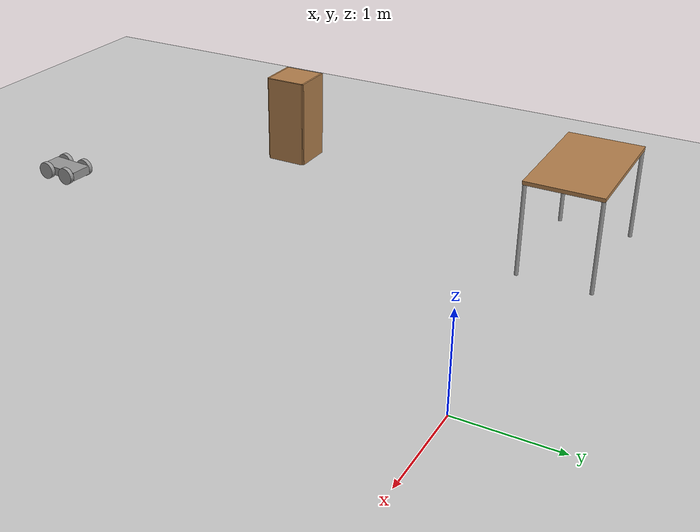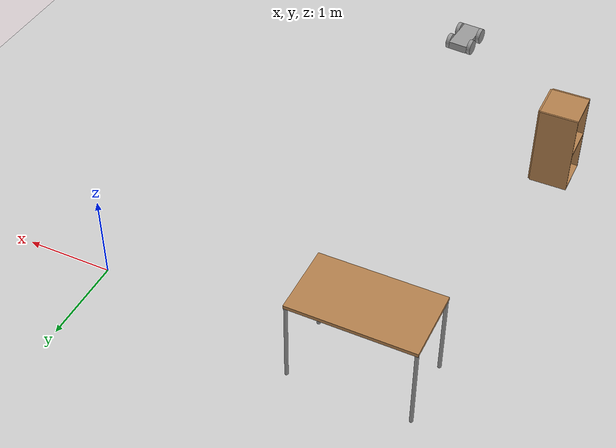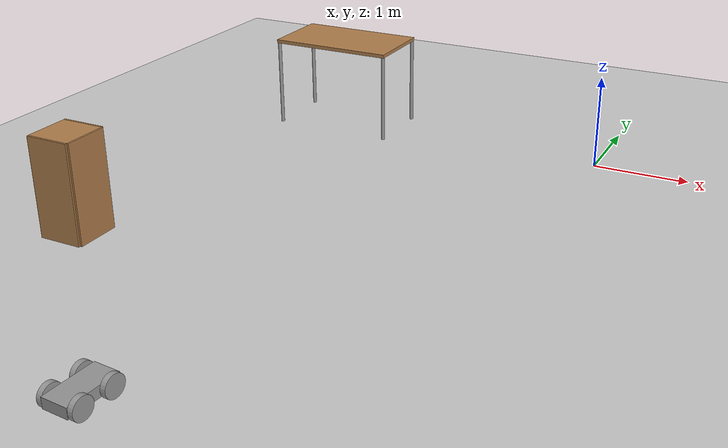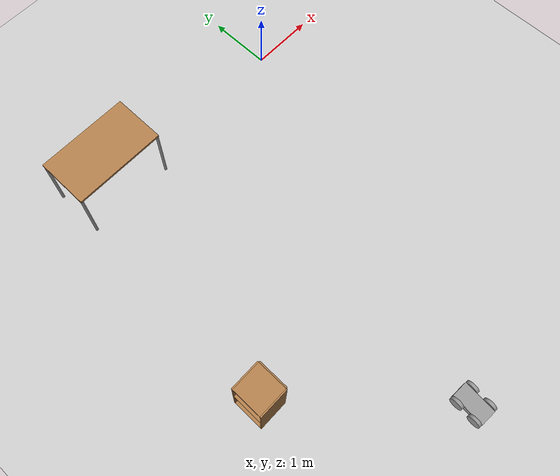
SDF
<sdf version="1.6">
 <world name="default">
  <model name="ground_plane">
   <static>1</static>
   <link name="link">
    <collision name="collision">
     <geometry><plane><normal>0 0 1</normal><size>100 100</size></plane></geometry>
     <surface><friction><ode><mu>100</mu><mu2>50</mu2></ode></friction></surface>
    </collision>
    <visual name="visual">
     <cast_shadows>0</cast_shadows>
     <geometry><plane><normal>0 0 1</normal><size>100 100</size></plane></geometry>
     <material>
      <script><uri>file://media/materials/scripts/gazebo.material</uri><name>Gazebo/Grey</name></script>
     </material>
    </visual>
   </link>
  </model>
  <model name="Car_0">
   <link name="link_0">
    <inertial>
     <mass>1</mass>
     <inertia>
      <ixx>0.166667</ixx>
      <ixy>0</ixy>
      <ixz>0</ixz>
      <iyy>0.166667</iyy>
      <iyz>0</iyz>
      <izz>0.166667</izz>
     </inertia>
    </inertial>
    <visual name="visual">
     <geometry><box><size>0.25 0.5 0.1</size></box></geometry>
     <material>
      <lighting>1</lighting>
      <script><uri>file://media/materials/scripts/gazebo.material</uri><name>Gazebo/Grey</name></script>
      <ambient>0.3 0.3 0.3 1</ambient>
      <diffuse>0.7 0.7 0.7 1</diffuse>
      <specular>0.01 0.01 0.01 1</specular>
      <emissive>0 0 0 1</emissive>
      <shader type="vertex"><normal_map>__default__</normal_map></shader>
     </material>
    </visual>
    <collision name="collision">
     <geometry><box><size>0.25 0.5 0.1</size></box></geometry>
     <surface>
      <friction>
       <ode><mu>1</mu><mu2>1</mu2><fdir1>0 0 0</fdir1><slip1>0</slip1><slip2>0</slip2></ode>
       <torsional>
        <coefficient>1</coefficient>
        <patch_radius>0</patch_radius>
        <surface_radius>0</surface_radius>
        <use_patch_radius>1</use_patch_radius>
        <ode><slip>0</slip></ode>
       </torsional>
      </friction>
      <bounce><restitution_coefficient>0</restitution_coefficient><threshold>1e+06</threshold></bounce>
      <contact>
       <collide_without_contact>0</collide_without_contact>
       <collide_without_contact_bitmask>1</collide_without_contact_bitmask>
       <collide_bitmask>1</collide_bitmask>
       <ode>
        <soft_cfm>0</soft_cfm>
        <soft_erp>0.2</soft_erp>
        <kp>1e+13</kp>
        <kd>1</kd>
        <max_vel>0.01</max_vel>
        <min_depth>0</min_depth>
       </ode>
       <bullet>
        <split_impulse>1</split_impulse>
        <split_impulse_penetration_threshold>-0.01</split_impulse_penetration_threshold>
        <soft_cfm>0</soft_cfm>
        <soft_erp>0.2</soft_erp>
        <kp>1e+13</kp>
        <kd>1</kd>
       </bullet>
      </contact>
     </surface>
    </collision>
   </link>
   <link name="link_1">
    <pose>-0.15001 0.15 0 0 1.5707 0</pose>
    <inertial>
     <mass>1</mass>
     <inertia><ixx>0.145833</ixx><ixy>0</ixy><ixz>0</ixz><iyy>0.145833</iyy><iyz>0</iyz><izz>0.125</izz></inertia>
    </inertial>
    <visual name="visual">
     <geometry><cylinder><radius>0.1</radius><length>0.05</length></cylinder></geometry>
     <material>
      <lighting>1</lighting>
      <script><uri>file://media/materials/scripts/gazebo.material</uri><name>Gazebo/Grey</name></script>
      <ambient>0.3 0.3 0.3 1</ambient>
      <diffuse>0.7 0.7 0.7 1</diffuse>
      <specular>0.01 0.01 0.01 1</specular>
      <emissive>0 0 0 1</emissive>
      <shader type="vertex"><normal_map>__default__</normal_map></shader>
     </material>
    </visual>
    <collision name="collision">
     <geometry><cylinder><radius>0.1</radius><length>0.05</length></cylinder></geometry>
     <surface>
      <friction>
       <ode><mu>1</mu><mu2>1</mu2><fdir1>0 0 0</fdir1><slip1>0</slip1><slip2>0</slip2></ode>
       <torsional>
        <coefficient>1</coefficient>
        <patch_radius>0</patch_radius>
        <surface_radius>0</surface_radius>
        <use_patch_radius>1</use_patch_radius>
        <ode><slip>0</slip></ode>
       </torsional>
      </friction>
      <bounce><restitution_coefficient>0</restitution_coefficient><threshold>1e+06</threshold></bounce>
      <contact>
       <collide_without_contact>0</collide_without_contact>
       <collide_without_contact_bitmask>1</collide_without_contact_bitmask>
       <collide_bitmask>1</collide_bitmask>
       <ode>
        <soft_cfm>0</soft_cfm>
        <soft_erp>0.2</soft_erp>
        <kp>1e+13</kp>
        <kd>1</kd>
        <max_vel>0.01</max_vel>
        <min_depth>0</min_depth>
       </ode>
       <bullet>
        <split_impulse>1</split_impulse>
        <split_impulse_penetration_threshold>-0.01</split_impulse_penetration_threshold>
        <soft_cfm>0</soft_cfm>
        <soft_erp>0.2</soft_erp>
        <kp>1e+13</kp>
        <kd>1</kd>
       </bullet>
      </contact>
     </surface>
    </collision>
   </link>
   <link name="link_1_clone">
    <pose>0.15001 -0.15 0 0 1.5707 0</pose>
    <inertial>
     <mass>1</mass>
     <inertia><ixx>0.145833</ixx><ixy>0</ixy><ixz>0</ixz><iyy>0.145833</iyy><iyz>0</iyz><izz>0.125</izz></inertia>
    </inertial>
    <visual name="visual">
     <geometry><cylinder><radius>0.1</radius><length>0.05</length></cylinder></geometry>
     <material>
      <lighting>1</lighting>
      <script><uri>file://media/materials/scripts/gazebo.material</uri><name>Gazebo/Grey</name></script>
      <ambient>0.3 0.3 0.3 1</ambient>
      <diffuse>0.7 0.7 0.7 1</diffuse>
      <specular>0.01 0.01 0.01 1</specular>
      <emissive>0 0 0 1</emissive>
      <shader type="vertex"><normal_map>__default__</normal_map></shader>
     </material>
    </visual>
    <collision name="collision">
     <geometry><cylinder><radius>0.1</radius><length>0.05</length></cylinder></geometry>
     <surface>
      <friction>
       <ode><mu>1</mu><mu2>1</mu2><fdir1>0 0 0</fdir1><slip1>0</slip1><slip2>0</slip2></ode>
       <torsional>
        <coefficient>1</coefficient>
        <patch_radius>0</patch_radius>
        <surface_radius>0</surface_radius>
        <use_patch_radius>1</use_patch_radius>
        <ode><slip>0</slip></ode>
       </torsional>
      </friction>
      <bounce><restitution_coefficient>0</restitution_coefficient><threshold>1e+06</threshold></bounce>
      <contact>
       <collide_without_contact>0</collide_without_contact>
       <collide_without_contact_bitmask>1</collide_without_contact_bitmask>
       <collide_bitmask>1</collide_bitmask>
       <ode>
        <soft_cfm>0</soft_cfm>
        <soft_erp>0.2</soft_erp>
        <kp>1e+13</kp>
        <kd>1</kd>
        <max_vel>0.01</max_vel>
        <min_depth>0</min_depth>
       </ode>
       <bullet>
        <split_impulse>1</split_impulse>
        <split_impulse_penetration_threshold>-0.01</split_impulse_penetration_threshold>
        <soft_cfm>0</soft_cfm>
        <soft_erp>0.2</soft_erp>
        <kp>1e+13</kp>
        <kd>1</kd>
       </bullet>
      </contact>
     </surface>
    </collision>
   </link>
   <link name="link_1_clone_0">
    <pose>-0.15001 -0.15 0 0 1.5707 0</pose>
    <inertial>
     <mass>1</mass>
     <inertia><ixx>0.145833</ixx><ixy>0</ixy><ixz>0</ixz><iyy>0.145833</iyy><iyz>0</iyz><izz>0.125</izz></inertia>
    </inertial>
    <visual name="visual">
     <geometry><cylinder><radius>0.1</radius><length>0.05</length></cylinder></geometry>
     <material>
      <lighting>1</lighting>
      <script><uri>file://media/materials/scripts/gazebo.material</uri><name>Gazebo/Grey</name></script>
      <ambient>0.3 0.3 0.3 1</ambient>
      <diffuse>0.7 0.7 0.7 1</diffuse>
      <specular>0.01 0.01 0.01 1</specular>
      <emissive>0 0 0 1</emissive>
      <shader type="vertex"><normal_map>__default__</normal_map></shader>
     </material>
    </visual>
    <collision name="collision">
     <geometry><cylinder><radius>0.1</radius><length>0.05</length></cylinder></geometry>
     <surface>
      <friction>
       <ode><mu>1</mu><mu2>1</mu2><fdir1>0 0 0</fdir1><slip1>0</slip1><slip2>0</slip2></ode>
       <torsional>
        <coefficient>1</coefficient>
        <patch_radius>0</patch_radius>
        <surface_radius>0</surface_radius>
        <use_patch_radius>1</use_patch_radius>
        <ode><slip>0</slip></ode>
       </torsional>
      </friction>
      <bounce><restitution_coefficient>0</restitution_coefficient><threshold>1e+06</threshold></bounce>
      <contact>
       <collide_without_contact>0</collide_without_contact>
       <collide_without_contact_bitmask>1</collide_without_contact_bitmask>
       <collide_bitmask>1</collide_bitmask>
       <ode>
        <soft_cfm>0</soft_cfm>
        <soft_erp>0.2</soft_erp>
        <kp>1e+13</kp>
        <kd>1</kd>
        <max_vel>0.01</max_vel>
        <min_depth>0</min_depth>
       </ode>
       <bullet>
        <split_impulse>1</split_impulse>
        <split_impulse_penetration_threshold>-0.01</split_impulse_penetration_threshold>
        <soft_cfm>0</soft_cfm>
        <soft_erp>0.2</soft_erp>
        <kp>1e+13</kp>
        <kd>1</kd>
       </bullet>
      </contact>
     </surface>
    </collision>
   </link>
   <link name="link_1_clone_clone">
    <pose>0.15001 0.15 0 0 1.5707 0</pose>
    <inertial>
     <mass>1</mass>
     <inertia><ixx>0.145833</ixx><ixy>0</ixy><ixz>0</ixz><iyy>0.145833</iyy><iyz>0</iyz><izz>0.125</izz></inertia>
    </inertial>
    <visual name="visual">
     <geometry><cylinder><radius>0.1</radius><length>0.05</length></cylinder></geometry>
     <material>
      <lighting>1</lighting>
      <script><uri>file://media/materials/scripts/gazebo.material</uri><name>Gazebo/Grey</name></script>
      <ambient>0.3 0.3 0.3 1</ambient>
      <diffuse>0.7 0.7 0.7 1</diffuse>
      <specular>0.01 0.01 0.01 1</specular>
      <emissive>0 0 0 1</emissive>
      <shader type="vertex"><normal_map>__default__</normal_map></shader>
     </material>
    </visual>
    <collision name="collision">
     <geometry><cylinder><radius>0.1</radius><length>0.05</length></cylinder></geometry>
     <surface>
      <friction>
       <ode><mu>1</mu><mu2>1</mu2><fdir1>0 0 0</fdir1><slip1>0</slip1><slip2>0</slip2></ode>
       <torsional>
        <coefficient>1</coefficient>
        <patch_radius>0</patch_radius>
        <surface_radius>0</surface_radius>
        <use_patch_radius>1</use_patch_radius>
        <ode><slip>0</slip></ode>
       </torsional>
      </friction>
      <bounce><restitution_coefficient>0</restitution_coefficient><threshold>1e+06</threshold></bounce>
      <contact>
       <collide_without_contact>0</collide_without_contact>
       <collide_without_contact_bitmask>1</collide_without_contact_bitmask>
       <collide_bitmask>1</collide_bitmask>
       <ode>
        <soft_cfm>0</soft_cfm>
        <soft_erp>0.2</soft_erp>
        <kp>1e+13</kp>
        <kd>1</kd>
        <max_vel>0.01</max_vel>
        <min_depth>0</min_depth>
       </ode>
       <bullet>
        <split_impulse>1</split_impulse>
        <split_impulse_penetration_threshold>-0.01</split_impulse_penetration_threshold>
        <soft_cfm>0</soft_cfm>
        <soft_erp>0.2</soft_erp>
        <kp>1e+13</kp>
        <kd>1</kd>
       </bullet>
      </contact>
     </surface>
    </collision>
   </link>
   <joint name="link_0_JOINT_0" type="revolute">
    <parent>link_0</parent>
    <child>link_1</child>
    <axis>
     <xyz>0 0 1</xyz>
     <use_parent_model_frame>0</use_parent_model_frame>
     <limit>
      <lower>-1.79769e+308</lower>
      <upper>1.79769e+308</upper>
      <effort>-1</effort>
      <velocity>-1</velocity>
     </limit>
     <dynamics>
      <spring_reference>0</spring_reference>
      <spring_stiffness>0</spring_stiffness>
      <damping>0</damping>
     </dynamics>
    </axis>
    <physics>
     <ode><limit><cfm>0</cfm><erp>0.2</erp></limit><suspension><cfm>0</cfm><erp>0.2</erp></suspension></ode>
    </physics>
   </joint>
   <joint name="link_0_JOINT_1" type="revolute">
    <parent>link_0</parent>
    <child>link_1_clone_0</child>
    <axis>
     <xyz>0 0 1</xyz>
     <use_parent_model_frame>0</use_parent_model_frame>
     <limit>
      <lower>-1.79769e+308</lower>
      <upper>1.79769e+308</upper>
      <effort>-1</effort>
      <velocity>-1</velocity>
     </limit>
     <dynamics>
      <spring_reference>0</spring_reference>
      <spring_stiffness>0</spring_stiffness>
      <damping>0</damping>
     </dynamics>
    </axis>
    <physics>
     <ode><limit><cfm>0</cfm><erp>0.2</erp></limit><suspension><cfm>0</cfm><erp>0.2</erp></suspension></ode>
    </physics>
   </joint>
   <joint name="link_0_JOINT_2" type="revolute">
    <parent>link_0</parent>
    <child>link_1_clone_clone</child>
    <axis>
     <xyz>0 0 1</xyz>
     <use_parent_model_frame>0</use_parent_model_frame>
     <limit>
      <lower>-1.79769e+308</lower>
      <upper>1.79769e+308</upper>
      <effort>-1</effort>
      <velocity>-1</velocity>
     </limit>
     <dynamics>
      <spring_reference>0</spring_reference>
      <spring_stiffness>0</spring_stiffness>
      <damping>0</damping>
     </dynamics>
    </axis>
    <physics>
     <ode><limit><cfm>0</cfm><erp>0.2</erp></limit><suspension><cfm>0</cfm><erp>0.2</erp></suspension></ode>
    </physics>
   </joint>
   <joint name="link_0_JOINT_3" type="revolute">
    <parent>link_0</parent>
    <child>link_1_clone</child>
    <axis>
     <xyz>0 0 1</xyz>
     <use_parent_model_frame>0</use_parent_model_frame>
     <limit>
      <lower>-1.79769e+308</lower>
      <upper>1.79769e+308</upper>
      <effort>-1</effort>
      <velocity>-1</velocity>
     </limit>
     <dynamics>
      <spring_reference>0</spring_reference>
      <spring_stiffness>0</spring_stiffness>
      <damping>0</damping>
     </dynamics>
    </axis>
    <physics>
     <ode><limit><cfm>0</cfm><erp>0.2</erp></limit><suspension><cfm>0</cfm><erp>0.2</erp></suspension></ode>
    </physics>
   </joint>
   <static>0</static>
   <pose>-2.04004 -5.74149 0.100002 3e-06 3e-06 -0.074128</pose>
  </model>
  <model name="table">
   <static>0</static>
   <link name="link">
    <collision name="surface">
     <pose>0 0 1 0 -0 0</pose>
     <geometry><box><size>1.5 0.8 0.03</size></box></geometry>
     <surface><friction><ode><mu>0.6</mu><mu2>0.6</mu2></ode></friction></surface>
    </collision>
    <visual name="visual1">
     <pose>0 0 1 0 -0 0</pose>
     <geometry><box><size>1.4 0.8 0.04</size></box></geometry>
     <material>
      <script><uri>file://media/materials/scripts/gazebo.material</uri><name>Gazebo/Wood</name></script>
     </material>
    </visual>
    <collision name="front_left_leg">
     <pose>0.68 0.38 0.5 0 -0 0</pose>
     <geometry><cylinder><radius>0.02</radius><length>1</length></cylinder></geometry>
    </collision>
    <visual name="front_left_leg">
     <pose>0.68 0.38 0.5 0 -0 0</pose>
     <geometry><cylinder><radius>0.02</radius><length>1</length></cylinder></geometry>
     <material>
      <script><uri>file://media/materials/scripts/gazebo.material</uri><name>Gazebo/Grey</name></script>
     </material>
    </visual>
    <collision name="front_right_leg">
     <pose>0.68 -0.38 0.5 0 -0 0</pose>
     <geometry><cylinder><radius>0.02</radius><length>1</length></cylinder></geometry>
    </collision>
    <visual name="front_right_leg">
     <pose>0.68 -0.38 0.5 0 -0 0</pose>
     <geometry><cylinder><radius>0.02</radius><length>1</length></cylinder></geometry>
     <material>
      <script><uri>file://media/materials/scripts/gazebo.material</uri><name>Gazebo/Grey</name></script>
     </material>
    </visual>
    <collision name="back_right_leg">
     <pose>-0.68 -0.38 0.5 0 -0 0</pose>
     <geometry><cylinder><radius>0.02</radius><length>1</length></cylinder></geometry>
    </collision>
    <visual name="back_right_leg">
     <pose>-0.68 -0.38 0.5 0 -0 0</pose>
     <geometry><cylinder><radius>0.02</radius><length>1</length></cylinder></geometry>
     <material>
      <script><uri>file://media/materials/scripts/gazebo.material</uri><name>Gazebo/Grey</name></script>
     </material>
    </visual>
    <collision name="back_left_leg">
     <pose>-0.68 0.38 0.5 0 -0 0</pose>
     <geometry><cylinder><radius>0.02</radius><length>1</length></cylinder></geometry>
    </collision>
    <visual name="back_left_leg">
     <pose>-0.68 0.38 0.5 0 -0 0</pose>
     <geometry><cylinder><radius>0.02</radius><length>1</length></cylinder></geometry>
     <material>
      <script><uri>file://media/materials/scripts/gazebo.material</uri><name>Gazebo/Grey</name></script>
     </material>
    </visual>
    <inertial>
     <inertia><ixx>1</ixx><ixy>0</ixy><ixz>0</ixz><iyy>1</iyy><iyz>0</iyz><izz>1</izz></inertia>
     <mass>1</mass>
    </inertial>
   </link>
   <pose>-3.10179 0.063738 -1e-06 0 1e-06 0</pose>
  </model>
  <model name="cabinet">
   <static>1</static>
   <link name="cabinet_bottom_plate">
    <inertial>
     <pose>0 0 -1 0 -0 0</pose>
     <inertia><ixx>2.05</ixx><ixy>0</ixy><ixz>0</ixz><iyy>2.05</iyy><iyz>0</iyz><izz>2.05</izz></inertia>
     <mass>25</mass>
    </inertial>
    <collision name="cabinet_bottom_plate_geom">
     <pose>0 0 0.01 0 -0 0</pose>
     <geometry><box><size>0.45 0.45 0.02</size></box></geometry>
    </collision>
    <visual name="cabinet_bottom_plate_geom_visual">
     <pose>0 0 0.01 0 -0 0</pose>
     <geometry><box><size>0.45 0.45 0.02</size></box></geometry>
     <material>
      <script><uri>file://media/materials/scripts/gazebo.material</uri><name>Gazebo/Wood</name></script>
     </material>
    </visual>
    <collision name="cabinet_bottom_plate_geom_cabinet_back_plate">
     <pose>0.235 0 0.51 0 -0 0</pose>
     <geometry><box><size>0.02 0.45 1.02</size></box></geometry>
    </collision>
    <visual name="cabinet_bottom_plate_geom_cabinet_back_plate_visual">
     <pose>0.235 0 0.51 0 -0 0</pose>
     <geometry><box><size>0.02 0.45 1.02</size></box></geometry>
     <material>
      <script><uri>file://media/materials/scripts/gazebo.material</uri><name>Gazebo/Wood</name></script>
     </material>
    </visual>
    <collision name="cabinet_bottom_plate_geom_cabinet_left_plate">
     <pose>0 0.235 0.51 0 -0 0</pose>
     <geometry><box><size>0.45 0.02 1.02</size></box></geometry>
    </collision>
    <visual name="cabinet_bottom_plate_geom_cabinet_left_plate_visual">
     <pose>0 0.235 0.51 0 -0 0</pose>
     <geometry><box><size>0.45 0.02 1.02</size></box></geometry>
     <material>
      <script><uri>file://media/materials/scripts/gazebo.material</uri><name>Gazebo/Wood</name></script>
     </material>
    </visual>
    <collision name="cabinet_bottom_plate_geom_cabinet_middle_plate">
     <pose>0 0 0.51 0 -0 0</pose>
     <geometry><box><size>0.45 0.45 0.02</size></box></geometry>
    </collision>
    <visual name="cabinet_bottom_plate_geom_cabinet_middle_plate_visual">
     <pose>0 0 0.51 0 -0 0</pose>
     <geometry><box><size>0.45 0.45 0.02</size></box></geometry>
     <material>
      <script><uri>file://media/materials/scripts/gazebo.material</uri><name>Gazebo/Wood</name></script>
     </material>
    </visual>
    <collision name="cabinet_bottom_plate_geom_cabinet_right_plate">
     <pose>0 -0.235 0.51 0 -0 0</pose>
     <geometry><box><size>0.45 0.02 1.02</size></box></geometry>
    </collision>
    <visual name="cabinet_bottom_plate_geom_cabinet_right_plate_visual">
     <pose>0 -0.235 0.51 0 -0 0</pose>
     <geometry><box><size>0.45 0.02 1.02</size></box></geometry>
     <material>
      <script><uri>file://media/materials/scripts/gazebo.material</uri><name>Gazebo/Wood</name></script>
     </material>
    </visual>
    <collision name="cabinet_bottom_plate_geom_cabinet_top_plate">
     <pose>0 0 1.01 0 -0 0</pose>
     <geometry><box><size>0.45 0.45 0.02</size></box></geometry>
    </collision>
    <visual name="cabinet_bottom_plate_geom_cabinet_top_plate_visual">
     <pose>0 0 1.01 0 -0 0</pose>
     <geometry><box><size>0.45 0.45 0.02</size></box></geometry>
     <material>
      <script><uri>file://media/materials/scripts/gazebo.material</uri><name>Gazebo/Wood</name></script>
     </material>
    </visual>
   </link>
   <pose>-3.92217 -3.71771 0 0 -0 0</pose>
  </model>
 </world>
</sdf>
